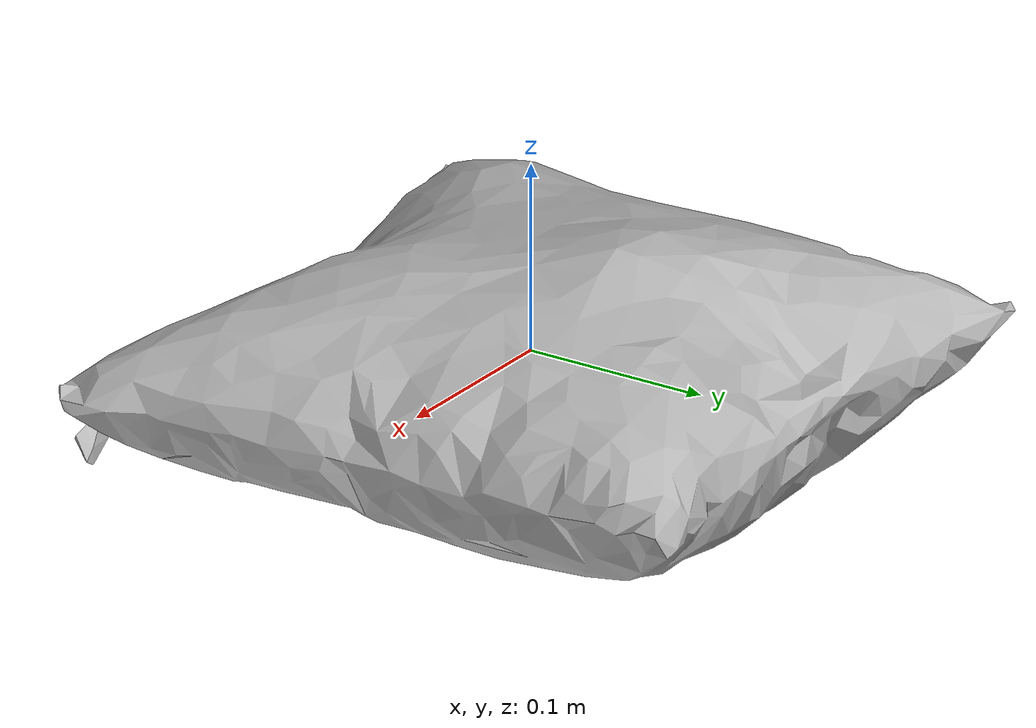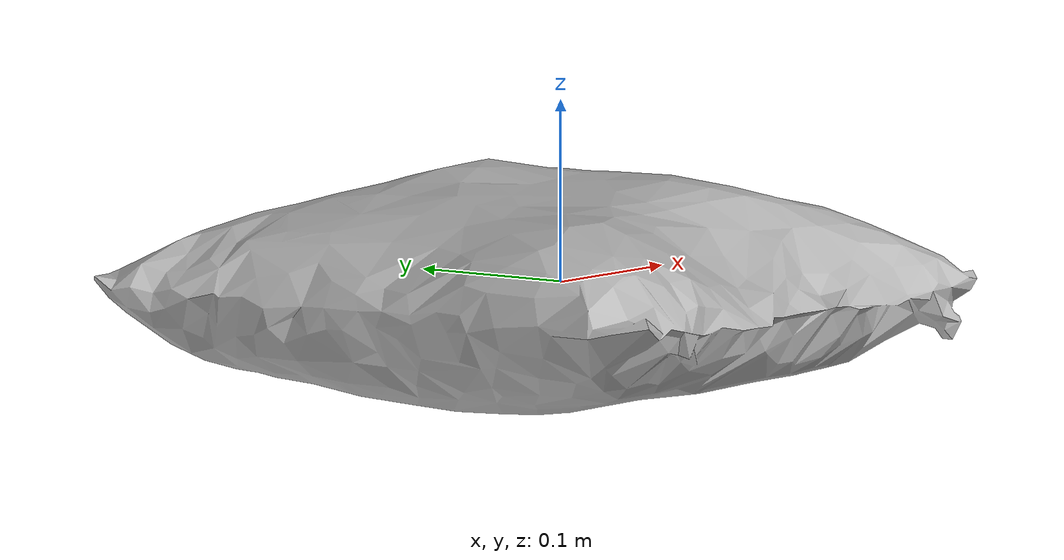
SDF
<?xml version="1.0" ?>
<sdf version="1.4">
    <model name='pillow'>
      <link name='link'>
        <pose>0 0 0 0 0 0</pose>
        <inertial>
          <mass>0.3</mass>
          <inertia>
            <ixx>0.003598</ixx>
            <ixy>0</ixy>
            <ixz>0</ixz>
            <iyy>0.003562</iyy>
            <iyz>0</iyz>
            <izz>0.006301</izz>
          </inertia>
        </inertial>
        <visual name='pillow'>
          <pose>0.0 0.0 0.0 0 0 0</pose>
          <geometry>
            <mesh>
              <uri>model://pillow/meshes/pillow.dae</uri>
            </mesh>
          </geometry>

        </visual>
        <collision name='pillow'>
          <pose>0.0 0.0 0.0 0 0 0</pose>
          <geometry>
            <mesh>
              <uri>model://pillow/meshes/pillow.dae</uri>
            </mesh>
          </geometry>
          <max_contacts>10</max_contacts>
          <surface>
            <bounce>
              <restitution_coefficient>0.2</restitution_coefficient>
              <threshold>0</threshold>
            </bounce>
            <friction>
              <ode/>
            </friction>
            <contact>
              <ode/>
            </contact>
          </surface>
        </collision>
        <velocity_decay>
          <linear>0</linear>
          <angular>0</angular>
        </velocity_decay>
        <self_collide>0</self_collide>
        <kinematic>0</kinematic>
        <gravity>1</gravity>
      </link>
      <static>0</static>
    </model>
</sdf>
